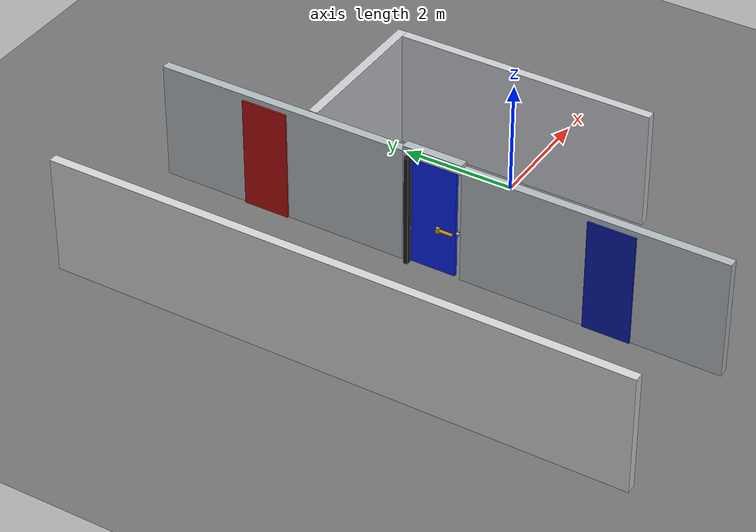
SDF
<?xml version='1.0' encoding='utf-8'?>
<sdf version="1.6">
  <world name="physical_contact_door_test">
    <physics name="default_physics" type="ode">
      <max_step_size>0.001</max_step_size>
      <real_time_update_rate>1000</real_time_update_rate>
    </physics>
    <plugin name="gz::sim::systems::Physics" filename="gz-sim-physics-system" />
    <plugin name="gz::sim::systems::Contact" filename="ignition-gazebo-contact-system" />
    <plugin name="fire_robot::ContactAudit" filename="libfire_robot_contact_audit.so" />
    <plugin name="gz::sim::systems::UserCommands" filename="gz-sim-user-commands-system" />
    <plugin name="gz::sim::systems::SceneBroadcaster" filename="gz-sim-scene-broadcaster-system" />
    <plugin name="gz::sim::systems::Sensors" filename="gz-sim-sensors-system">
      <render_engine>ogre2</render_engine>
    </plugin>
    <light type="directional" name="sun">
      <pose>0 0 8 0 0 0</pose>
      <diffuse>0.9 0.9 0.9 1</diffuse>
      <direction>-0.3 0.2 -1</direction>
    </light>
    <model name="ground">
      <static>true</static>
      <link name="link">
        <collision name="collision">
          <geometry>
            <plane>
              <normal>0 0 1</normal>
              <size>20 20</size>
            </plane>
          </geometry>
        </collision>
        <visual name="visual">
          <geometry>
            <plane>
              <normal>0 0 1</normal>
              <size>20 20</size>
            </plane>
          </geometry>
          <material>
            <ambient>0.45 0.45 0.45 1</ambient>
            <diffuse>0.45 0.45 0.45 1</diffuse>
          </material>
        </visual>
      </link>
    </model>
    <model name="proof_overhead_camera">
      <static>true</static>
      <pose>-2.80 0.00 5.00 0 1.5708 0</pose>
      <link name="link">
        <sensor name="proof_overhead_camera" type="camera">
          <always_on>true</always_on>
          <update_rate>3</update_rate>
          <topic>/proof/overhead/image</topic>
          <camera name="proof_overhead">
            <horizontal_fov>1.20</horizontal_fov>
            <image>
              <width>1280</width>
              <height>720</height>
              <format>R8G8B8</format>
            </image>
            <clip>
              <near>0.10</near>
              <far>20.0</far>
            </clip>
          </camera>
        </sensor>
      </link>
    </model>
    <model name="proof_perspective_camera">
      <static>true</static>
      <pose>-4.20 -2.50 2.20 0 0.46 0.97</pose>
      <link name="link">
        <sensor name="proof_perspective_camera" type="camera">
          <always_on>true</always_on>
          <update_rate>3</update_rate>
          <topic>/proof/perspective/image</topic>
          <camera name="proof_perspective">
            <horizontal_fov>1.18</horizontal_fov>
            <image>
              <width>1280</width>
              <height>720</height>
              <format>R8G8B8</format>
            </image>
            <clip>
              <near>0.10</near>
              <far>20.0</far>
            </clip>
          </camera>
        </sensor>
      </link>
    </model>
    <model name="proof_handle_camera">
      <static>true</static>
      <pose>-3.10 -0.70 1.20 0 0.34 1.02</pose>
      <link name="link">
        <sensor name="proof_handle_camera" type="camera">
          <always_on>true</always_on>
          <update_rate>3</update_rate>
          <topic>/proof/handle/image</topic>
          <camera name="proof_handle">
            <horizontal_fov>0.80</horizontal_fov>
            <image>
              <width>960</width>
              <height>720</height>
              <format>R8G8B8</format>
            </image>
            <clip>
              <near>0.05</near>
              <far>10.0</far>
            </clip>
          </camera>
        </sensor>
      </link>
    </model>
    <model name="blue_hinged_contact_door">
      <pose>-2.495 0.4 0 -0 0 -0</pose>
      <self_collide>true</self_collide>
      <link name="frame">
        <inertial>
          <mass>20</mass>
          <inertia>
            <ixx>1</ixx>
            <iyy>1</iyy>
            <izz>1</izz>
          </inertia>
        </inertial>
        <collision name="hinge_post_collision">
          <pose>-0.08 0.05 1 -0 0 -0</pose>
          <geometry>
            <box>
              <size>0.10 0.08 2.05</size>
            </box>
          </geometry>
        </collision>
        <visual name="hinge_post">
          <pose>-0.08 0.05 1 -0 0 -0</pose>
          <geometry>
            <box>
              <size>0.10 0.08 2.05</size>
            </box>
          </geometry>
          <material>
            <ambient>0.12 0.12 0.12 1</ambient>
            <diffuse>0.12 0.12 0.12 1</diffuse>
          </material>
        </visual>
        <collision name="latch_strike_collision">
          <pose>0.055 -0.84 0.83 -0 0 -0</pose>
          <geometry>
            <box>
              <size>0.04 0.08 0.05</size>
            </box>
          </geometry>
          <surface>
            <friction>
              <ode>
                <mu>0.7</mu>
                <mu2>0.7</mu2>
              </ode>
            </friction>
            <contact>
              <ode>
                <kp>800000</kp>
                <kd>40</kd>
              </ode>
            </contact>
          </surface>
        </collision>
        <visual name="latch_strike_visual">
          <pose>0.055 -0.84 0.83 -0 0 -0</pose>
          <geometry>
            <box>
              <size>0.04 0.08 0.05</size>
            </box>
          </geometry>
          <material>
            <ambient>0.55 0.55 0.55 1</ambient>
            <diffuse>0.55 0.55 0.55 1</diffuse>
          </material>
        </visual>
        <sensor name="jamb_contacts" type="contact">
          <contact>
            <collision>hinge_post_collision</collision>
            <topic>/proof/contact/jamb</topic>
          </contact>
          <always_on>true</always_on>
          <update_rate>20</update_rate>
        </sensor>
        <sensor name="strike_contacts" type="contact">
          <contact>
            <collision>latch_strike_collision</collision>
            <topic>/proof/contact/strike</topic>
          </contact>
          <always_on>true</always_on>
          <update_rate>20</update_rate>
        </sensor>
      </link>
      <joint name="frame_fixed" type="fixed">
        <parent>world</parent>
        <child>frame</child>
      </joint>
      <link name="panel">
        <pose>0 -0.4 1 -0 0 -0</pose>
        <inertial>
          <mass>18.0</mass>
          <inertia>
            <ixx>6.96</ixx>
            <iyy>6.01</iyy>
            <izz>0.97</izz>
          </inertia>
        </inertial>
        <collision name="panel_collision">
          <geometry>
            <box>
              <size>0.06 0.80 1.98</size>
            </box>
          </geometry>
          <surface>
            <friction>
              <ode>
                <mu>1.5</mu>
                <mu2>1.5</mu2>
              </ode>
            </friction>
            <contact>
              <ode>
                <kp>600000</kp>
                <kd>30</kd>
              </ode>
            </contact>
          </surface>
        </collision>
        <visual name="panel_visual">
          <geometry>
            <box>
              <size>0.06 0.80 1.98</size>
            </box>
          </geometry>
          <material>
            <ambient>0.04 0.14 0.92 1</ambient>
            <diffuse>0.04 0.14 0.92 1</diffuse>
          </material>
        </visual>
        <collision name="handle_mount_collision">
          <pose>-0.078 -0.11 -0.17 -0 0 -0</pose>
          <geometry>
            <box>
              <size>0.05 0.06 0.10</size>
            </box>
          </geometry>
          <surface>
            <friction>
              <ode>
                <mu>0.8</mu>
                <mu2>0.8</mu2>
              </ode>
            </friction>
            <contact>
              <ode>
                <kp>800000</kp>
                <kd>40</kd>
              </ode>
            </contact>
          </surface>
        </collision>
        <visual name="handle_mount_visual">
          <pose>-0.078 -0.11 -0.17 -0 0 -0</pose>
          <geometry>
            <box>
              <size>0.05 0.06 0.10</size>
            </box>
          </geometry>
          <material>
            <ambient>0.8 0.65 0.05 1</ambient>
            <diffuse>0.8 0.65 0.05 1</diffuse>
          </material>
        </visual>
        <sensor name="panel_contact_diagnostic" type="contact">
          <contact>
            <collision>panel_collision</collision>
            <topic>/proof/contact/panel</topic>
          </contact>
          <always_on>true</always_on>
          <update_rate>20</update_rate>
        </sensor>
      </link>
      <link name="lever">
        <pose>-0.075 -0.51 0.83 -0 0 -0</pose>
        <inertial>
          <mass>0.22</mass>
          <inertia>
            <ixx>0.0013</ixx>
            <iyy>0.00015</iyy>
            <izz>0.0013</izz>
          </inertia>
        </inertial>
        <collision name="lever_collision">
          <pose>0 -0.13 0 -1.5708 0 -0</pose>
          <geometry>
            <cylinder>
              <radius>0.026</radius>
              <length>0.26</length>
            </cylinder>
          </geometry>
          <surface>
            <friction>
              <ode>
                <mu>5.0</mu>
                <mu2>5.0</mu2>
              </ode>
            </friction>
            <contact>
              <ode>
                <kp>800000</kp>
                <kd>40</kd>
              </ode>
            </contact>
          </surface>
        </collision>
        <visual name="lever_visual">
          <pose>0 -0.13 0 -1.5708 0 -0</pose>
          <geometry>
            <cylinder>
              <radius>0.026</radius>
              <length>0.26</length>
            </cylinder>
          </geometry>
          <material>
            <ambient>0.8 0.65 0.05 1</ambient>
            <diffuse>0.8 0.65 0.05 1</diffuse>
          </material>
        </visual>
        <collision name="latch_bolt_collision">
          <pose>0.075 -0.32 0 -0 0 -0</pose>
          <geometry>
            <box>
              <size>0.05 0.05 0.03</size>
            </box>
          </geometry>
          <surface>
            <friction>
              <ode>
                <mu>0.35</mu>
                <mu2>0.35</mu2>
              </ode>
            </friction>
            <contact>
              <ode>
                <kp>800000</kp>
                <kd>40</kd>
              </ode>
            </contact>
          </surface>
        </collision>
        <visual name="latch_bolt_visual">
          <pose>0.075 -0.32 0 -0 0 -0</pose>
          <geometry>
            <box>
              <size>0.05 0.05 0.03</size>
            </box>
          </geometry>
          <material>
            <ambient>0.7 0.7 0.7 1</ambient>
            <diffuse>0.7 0.7 0.7 1</diffuse>
          </material>
        </visual>
        <sensor name="lever_contact_diagnostic" type="contact">
          <contact>
            <collision>lever_collision</collision>
            <topic>/proof/contact/lever</topic>
          </contact>
          <always_on>true</always_on>
          <update_rate>20</update_rate>
        </sensor>
        <sensor name="latch_contact_diagnostic" type="contact">
          <contact>
            <collision>latch_bolt_collision</collision>
            <topic>/proof/contact/latch</topic>
          </contact>
          <always_on>true</always_on>
          <update_rate>20</update_rate>
        </sensor>
      </link>
      <joint name="lever_joint" type="revolute">
        <pose>0 -0 0 -0 0 -0</pose>
        <parent>panel</parent>
        <child>lever</child>
        <axis>
          <xyz>1 0 0</xyz>
          <limit>
            <lower>-0.1</lower>
            <upper>0.55</upper>
            <effort>25</effort>
            <velocity>1.2</velocity>
          </limit>
          <dynamics>
            <damping>0.40</damping>
            <friction>0.04</friction>
            <spring_reference>-0</spring_reference>
            <spring_stiffness>6.0</spring_stiffness>
          </dynamics>
        </axis>
      </joint>
      <joint name="door_hinge" type="revolute">
        <pose>0 0.4 0 -0 0 -0</pose>
        <parent>frame</parent>
        <child>panel</child>
        <axis>
          <xyz>0 0 1</xyz>
          <limit>
            <lower>-0.05</lower>
            <upper>2.25</upper>
            <effort>120</effort>
            <velocity>2.0</velocity>
          </limit>
          <dynamics>
            <damping>0.80</damping>
            <friction>2.0</friction>
          </dynamics>
        </axis>
      </joint>
      <plugin filename="gz-sim-joint-state-publisher-system" name="gz::sim::systems::JointStatePublisher">
        <topic>/door_joint_states</topic>
      </plugin>
    </model>
    <model name="demo_wall_lower">
      <static>true</static>
      <pose>-2.47 2.8 1.05 -0 0 -0</pose>
      <link name="link">
        <collision name="collision">
          <geometry>
            <box>
              <size>0.16 4.5 2.1</size>
            </box>
          </geometry>
        </collision>
        <visual name="visual">
          <geometry>
            <box>
              <size>0.16 4.5 2.1</size>
            </box>
          </geometry>
          <material>
            <ambient>.70 .73 .75 1</ambient>
            <diffuse>.70 .73 .75 1</diffuse>
          </material>
        </visual>
      </link>
    </model>
    <model name="demo_wall_upper">
      <static>true</static>
      <pose>-2.47 -2.775 1.05 -0 0 -0</pose>
      <link name="link">
        <collision name="collision">
          <geometry>
            <box>
              <size>0.16 4.55 2.1</size>
            </box>
          </geometry>
        </collision>
        <visual name="visual">
          <geometry>
            <box>
              <size>0.16 4.55 2.1</size>
            </box>
          </geometry>
          <material>
            <ambient>.70 .73 .75 1</ambient>
            <diffuse>.70 .73 .75 1</diffuse>
          </material>
        </visual>
      </link>
    </model>
    <model name="demo_door_lintel">
      <static>true</static>
      <pose>-2.47 0.025 2.1 -0 0 -0</pose>
      <link name="link">
        <collision name="collision">
          <geometry>
            <box>
              <size>0.16 1.05 0.18</size>
            </box>
          </geometry>
        </collision>
        <visual name="visual">
          <geometry>
            <box>
              <size>0.16 1.05 0.18</size>
            </box>
          </geometry>
          <material>
            <ambient>.70 .73 .75 1</ambient>
            <diffuse>.70 .73 .75 1</diffuse>
          </material>
        </visual>
      </link>
    </model>
    <model name="demo_opposite_wall">
      <static>true</static>
      <pose>-5.5 -0 1.05 -0 0 -0</pose>
      <link name="link">
        <collision name="collision">
          <geometry>
            <box>
              <size>0.16 10.1 2.1</size>
            </box>
          </geometry>
        </collision>
        <visual name="visual">
          <geometry>
            <box>
              <size>0.16 10.1 2.1</size>
            </box>
          </geometry>
          <material>
            <ambient>.82 .83 .84 1</ambient>
            <diffuse>.82 .83 .84 1</diffuse>
          </material>
        </visual>
      </link>
    </model>
    <model name="demo_room_back">
      <static>true</static>
      <pose>0.3 -0 1.05 -0 0 -0</pose>
      <link name="link">
        <collision name="collision">
          <geometry>
            <box>
              <size>0.16 4.6 2.1</size>
            </box>
          </geometry>
        </collision>
        <visual name="visual">
          <geometry>
            <box>
              <size>0.16 4.6 2.1</size>
            </box>
          </geometry>
          <material>
            <ambient>.79 .80 .82 1</ambient>
            <diffuse>.79 .80 .82 1</diffuse>
          </material>
        </visual>
      </link>
    </model>
    <model name="demo_room_end">
      <static>true</static>
      <pose>-1 2.3 1.05 -0 0 -0</pose>
      <link name="link">
        <collision name="collision">
          <geometry>
            <box>
              <size>2.75 0.16 2.1</size>
            </box>
          </geometry>
        </collision>
        <visual name="visual">
          <geometry>
            <box>
              <size>2.75 0.16 2.1</size>
            </box>
          </geometry>
          <material>
            <ambient>.79 .80 .82 1</ambient>
            <diffuse>.79 .80 .82 1</diffuse>
          </material>
        </visual>
      </link>
    </model>
    <model name="demo_background_red_door">
      <static>true</static>
      <pose>-2.56 3.1 1 -0 0 -0</pose>
      <link name="link">
        <collision name="collision">
          <geometry>
            <box>
              <size>0.045 0.82 2.0</size>
            </box>
          </geometry>
        </collision>
        <visual name="visual">
          <geometry>
            <box>
              <size>0.045 0.82 2.0</size>
            </box>
          </geometry>
          <material>
            <ambient>.7 .06 .06 1</ambient>
            <diffuse>.7 .06 .06 1</diffuse>
          </material>
        </visual>
      </link>
    </model>
    <model name="demo_background_blue_door">
      <static>true</static>
      <pose>-2.56 -3.1 1 -0 0 -0</pose>
      <link name="link">
        <collision name="collision">
          <geometry>
            <box>
              <size>0.045 0.82 2.0</size>
            </box>
          </geometry>
        </collision>
        <visual name="visual">
          <geometry>
            <box>
              <size>0.045 0.82 2.0</size>
            </box>
          </geometry>
          <material>
            <ambient>.04 .10 .65 1</ambient>
            <diffuse>.04 .10 .65 1</diffuse>
          </material>
        </visual>
      </link>
    </model>
  </world>
</sdf>
